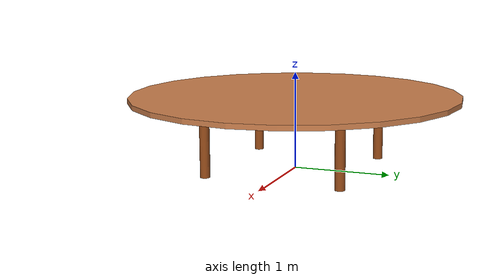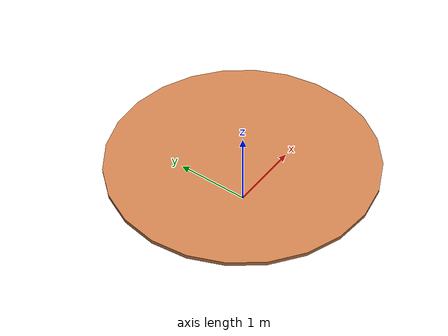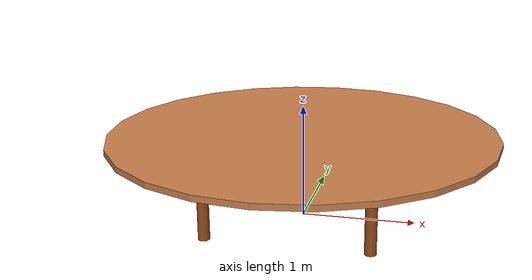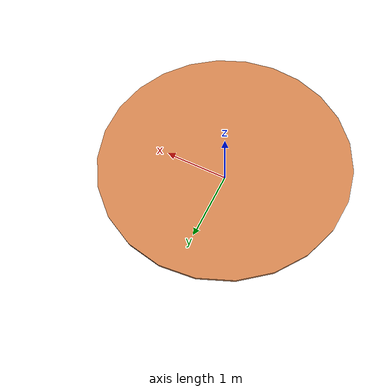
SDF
<?xml version="1.0"?>
<sdf version="1.6">
  <model name="round_table">
    <static>true</static>

    <!-- Table Top -->
    <link name="table_top">
      <pose>0 0 0.75 0 0 0</pose> <!-- Positioned 0.75 meters above the ground -->
      <visual name="visual_top">
        <geometry>
          <cylinder>
            <radius>1.7</radius>
            <length>0.05</length>
          </cylinder>
        </geometry>
        <material>
          <ambient>0.8 0.5 0.3 1</ambient> <!-- Wood-like color -->
        </material>
      </visual>
      <collision name="collision_top">
        <geometry>
          <cylinder>
            <radius>1.7</radius>
            <length>0.05</length>
          </cylinder>
        </geometry>
      </collision>
    </link>

    <!-- Table Legs -->
    <link name="table_leg_1">
      <pose>0.7 0.7 0.375 0 0 0</pose>
      <visual name="visual_leg_1">
        <geometry>
          <cylinder>
            <radius>0.05</radius>
            <length>0.75</length>
          </cylinder>
        </geometry>
        <material>
          <ambient>0.6 0.3 0.1 1</ambient>
        </material>
      </visual>
      <collision name="collision_leg_1">
        <geometry>
          <cylinder>
            <radius>0.05</radius>
            <length>0.75</length>
          </cylinder>
        </geometry>
      </collision>
    </link>

    <link name="table_leg_2">
      <pose>-0.7 0.7 0.375 0 0 0</pose>
      <visual name="visual_leg_2">
        <geometry>
          <cylinder>
            <radius>0.05</radius>
            <length>0.75</length>
          </cylinder>
        </geometry>
        <material>
          <ambient>0.6 0.3 0.1 1</ambient>
        </material>
      </visual>
      <collision name="collision_leg_2">
        <geometry>
          <cylinder>
            <radius>0.05</radius>
            <length>0.75</length>
          </cylinder>
        </geometry>
      </collision>
    </link>

    <link name="table_leg_3">
      <pose>-0.7 -0.7 0.375 0 0 0</pose>
      <visual name="visual_leg_3">
        <geometry>
          <cylinder>
            <radius>0.05</radius>
            <length>0.75</length>
          </cylinder>
        </geometry>
        <material>
          <ambient>0.6 0.3 0.1 1</ambient>
        </material>
      </visual>
      <collision name="collision_leg_3">
        <geometry>
          <cylinder>
            <radius>0.05</radius>
            <length>0.75</length>
          </cylinder>
        </geometry>
      </collision>
    </link>

    <link name="table_leg_4">
      <pose>0.7 -0.7 0.375 0 0 0</pose>
      <visual name="visual_leg_4">
        <geometry>
          <cylinder>
            <radius>0.05</radius>
            <length>0.75</length>
          </cylinder>
        </geometry>
        <material>
          <ambient>0.6 0.3 0.1 1</ambient>
        </material>
      </visual>
      <collision name="collision_leg_4">
        <geometry>
          <cylinder>
            <radius>0.05</radius>
            <length>0.75</length>
          </cylinder>
        </geometry>
      </collision>
    </link>
  </model>
</sdf>
